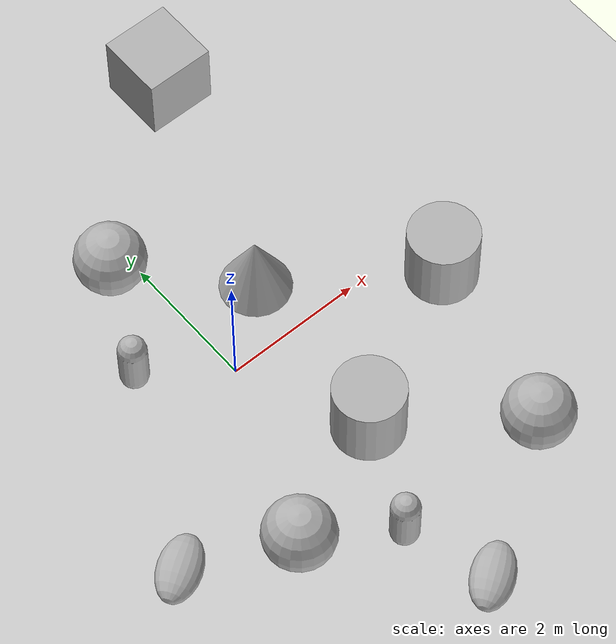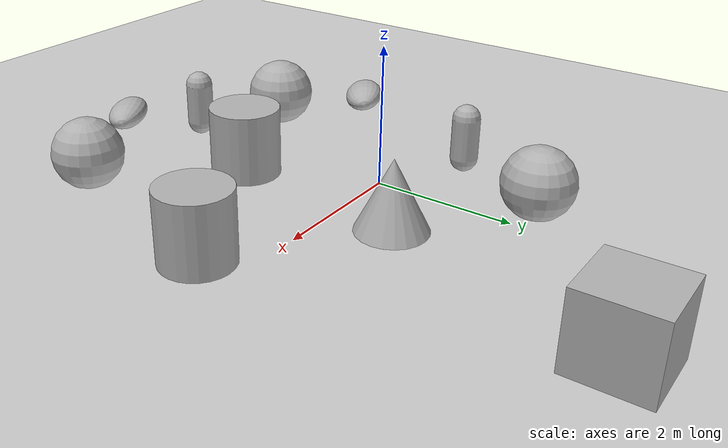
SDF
<sdf version='1.10'>
  <world name='empty'>
  	<plugin name='gz::sim::systems::Sensors' filename='gz-sim-sensors-system'>
  	<render_engine>ogre</render_engine>
	</plugin>
    <physics name='1ms' type='ignored'>
      <max_step_size>0.001</max_step_size>
      <real_time_factor>1</real_time_factor>
      <real_time_update_rate>1000</real_time_update_rate>
    </physics>
    <plugin name='gz::sim::systems::Physics' filename='gz-sim-physics-system'/>
    <plugin name='gz::sim::systems::UserCommands' filename='gz-sim-user-commands-system'/>
    <plugin name='gz::sim::systems::SceneBroadcaster' filename='gz-sim-scene-broadcaster-system'/>
    <plugin name='gz::sim::systems::Contact' filename='gz-sim-contact-system'/>
    <gravity>0 0 -9.8000000000000007</gravity>
    <magnetic_field>5.5644999999999998e-06 2.2875799999999999e-05 -4.2388400000000002e-05</magnetic_field>
    <atmosphere type='adiabatic'/>
    <scene>
      <ambient>0.400000006 0.400000006 0.400000006 1</ambient>
      <background>0.699999988 0.699999988 0.699999988 1</background>
      <shadows>true</shadows>
    </scene>
    <model name='ground_plane'>
      <static>true</static>
      <link name='link'>
        <collision name='collision'>
          <geometry>
            <plane>
              <normal>0 0 1</normal>
              <size>100 100</size>
            </plane>
          </geometry>
          <surface>
            <friction>
              <ode/>
            </friction>
            <bounce/>
            <contact/>
          </surface>
        </collision>
        <visual name='visual'>
          <geometry>
            <plane>
              <normal>0 0 1</normal>
              <size>100 100</size>
            </plane>
          </geometry>
          <material>
            <ambient>0.800000012 0.800000012 0.800000012 1</ambient>
            <diffuse>0.800000012 0.800000012 0.800000012 1</diffuse>
            <specular>0.800000012 0.800000012 0.800000012 1</specular>
          </material>
        </visual>
        <pose>0 0 0 0 0 0</pose>
        <inertial>
          <pose>0 0 0 0 0 0</pose>
          <mass>1</mass>
          <inertia>
            <ixx>1</ixx>
            <ixy>0</ixy>
            <ixz>0</ixz>
            <iyy>1</iyy>
            <iyz>0</iyz>
            <izz>1</izz>
          </inertia>
        </inertial>
        <enable_wind>false</enable_wind>
      </link>
      <pose>0 0 0 0 0 0</pose>
      <self_collide>false</self_collide>
    </model>

    <model name='cone'>
      <pose>1.0566565018909955 0.8556041575203317 0.49999999602630368 2.1489919356272052e-09 -8.0147252590950264e-09 -1.0114619432479267e-14</pose>
      <link name='cone_link'>
        <inertial>
          <inertia>
            <ixx>0.074999999999999997</ixx>
            <ixy>0</ixy>
            <ixz>0</ixz>
            <iyy>0.074999999999999997</iyy>
            <iyz>0</iyz>
            <izz>0.074999999999999997</izz>
          </inertia>
          <mass>1</mass>
          <pose>0 0 0 0 0 0</pose>
        </inertial>
        <collision name='cone_collision'>
          <geometry>
            <cone>
              <radius>0.5</radius>
              <length>1</length>
            </cone>
          </geometry>
          <surface>
            <friction>
              <ode/>
            </friction>
            <bounce/>
            <contact/>
          </surface>
        </collision>
        <visual name='cone_visual'>
          <geometry>
            <cone>
              <radius>0.5</radius>
              <length>1</length>
            </cone>
          </geometry>
          <material>
            <ambient>0.300000012 0.300000012 0.300000012 1</ambient>
            <diffuse>0.699999988 0.699999988 0.699999988 1</diffuse>
            <specular>1 1 1 1</specular>
          </material>
        </visual>
        <pose>0 0 0 0 0 0</pose>
        <enable_wind>false</enable_wind>
      </link>
      <static>false</static>
      <self_collide>false</self_collide>
    </model>
    <model name='cylinder'>
      <pose>0.78746553411709375 -1.7667481294421423 0.49999999631413172 -9.6359215885351035e-18 -5.7262084307341396e-17 2.2892490610145147e-17</pose>
      <link name='cylinder_link'>
        <inertial>
          <inertia>
            <ixx>0.14580000000000001</ixx>
            <ixy>0</ixy>
            <ixz>0</ixz>
            <iyy>0.14580000000000001</iyy>
            <iyz>0</iyz>
            <izz>0.125</izz>
          </inertia>
          <mass>1</mass>
          <pose>0 0 0 0 0 0</pose>
        </inertial>
        <collision name='cylinder_collision'>
          <geometry>
            <cylinder>
              <radius>0.5</radius>
              <length>1</length>
            </cylinder>
          </geometry>
          <surface>
            <friction>
              <ode/>
            </friction>
            <bounce/>
            <contact/>
          </surface>
        </collision>
        <visual name='cylinder_visual'>
          <geometry>
            <cylinder>
              <radius>0.5</radius>
              <length>1</length>
            </cylinder>
          </geometry>
          <material>
            <ambient>0.300000012 0.300000012 0.300000012 1</ambient>
            <diffuse>0.699999988 0.699999988 0.699999988 1</diffuse>
            <specular>1 1 1 1</specular>
          </material>
        </visual>
        <pose>0 0 0 0 0 0</pose>
        <enable_wind>false</enable_wind>
      </link>
      <static>false</static>
      <self_collide>false</self_collide>
    </model>
    <model name='capsule'>
      <pose>-1.099770901406921 0.73123100639006677 0.49999999020000274 0 0 0</pose>
      <link name='capsule_link'>
        <inertial>
          <inertia>
            <ixx>0.074153999999999998</ixx>
            <ixy>0</ixy>
            <ixz>0</ixz>
            <iyy>0.074153999999999998</iyy>
            <iyz>0</iyz>
            <izz>0.018769000000000001</izz>
          </inertia>
          <mass>1</mass>
          <pose>0 0 0 0 0 0</pose>
        </inertial>
        <collision name='capsule_collision'>
          <geometry>
            <capsule>
              <radius>0.20000000000000001</radius>
              <length>0.59999999999999998</length>
            </capsule>
          </geometry>
          <surface>
            <friction>
              <ode/>
            </friction>
            <bounce/>
            <contact/>
          </surface>
        </collision>
        <visual name='capsule_visual'>
          <geometry>
            <capsule>
              <radius>0.20000000000000001</radius>
              <length>0.59999999999999998</length>
            </capsule>
          </geometry>
          <material>
            <ambient>0.300000012 0.300000012 0.300000012 1</ambient>
            <diffuse>0.699999988 0.699999988 0.699999988 1</diffuse>
            <specular>1 1 1 1</specular>
          </material>
        </visual>
        <pose>0 0 0 0 0 0</pose>
        <enable_wind>false</enable_wind>
      </link>
      <static>false</static>
      <self_collide>false</self_collide>
    </model>
    <model name='ellipsoid'>
      <pose>-2.4260958961574453 -1.8574463369977108 0.18666848753861814 1.5707963267948863 -1.377489697700035 -0.98012862669004841</pose>
      <link name='ellipsoid_link'>
        <inertial>
          <inertia>
            <ixx>0.068000000000000005</ixx>
            <ixy>0</ixy>
            <ixz>0</ixz>
            <iyy>0.058000000000000003</iyy>
            <iyz>0</iyz>
            <izz>0.025999999999999999</izz>
          </inertia>
          <mass>1</mass>
          <pose>0 0 0 0 0 0</pose>
        </inertial>
        <collision name='ellipsoid_collision'>
          <geometry>
            <ellipsoid>
              <radii>0.20000000000000001 0.29999999999999999 0.5</radii>
            </ellipsoid>
          </geometry>
          <surface>
            <friction>
              <ode/>
            </friction>
            <bounce/>
            <contact/>
          </surface>
        </collision>
        <visual name='ellipsoid_visual'>
          <geometry>
            <ellipsoid>
              <radii>0.20000000000000001 0.29999999999999999 0.5</radii>
            </ellipsoid>
          </geometry>
          <material>
            <ambient>0.300000012 0.300000012 0.300000012 1</ambient>
            <diffuse>0.699999988 0.699999988 0.699999988 1</diffuse>
            <specular>1 1 1 1</specular>
          </material>
        </visual>
        <pose>0 0 0 0 0 0</pose>
        <enable_wind>false</enable_wind>
      </link>
      <static>false</static>
      <self_collide>false</self_collide>
    </model>
    <model name='cylinder_0'>
      <pose>3.0764837405353465 -0.61369960941644208 0.49999999631413172 -1.728194940527117e-17 5.9431014586288697e-18 2.7827239198683113e-18</pose>
      <link name='cylinder_link'>
        <inertial>
          <inertia>
            <ixx>0.14580000000000001</ixx>
            <ixy>0</ixy>
            <ixz>0</ixz>
            <iyy>0.14580000000000001</iyy>
            <iyz>0</iyz>
            <izz>0.125</izz>
          </inertia>
          <mass>1</mass>
          <pose>0 0 0 0 0 0</pose>
        </inertial>
        <collision name='cylinder_collision'>
          <geometry>
            <cylinder>
              <radius>0.5</radius>
              <length>1</length>
            </cylinder>
          </geometry>
          <surface>
            <friction>
              <ode/>
            </friction>
            <bounce/>
            <contact/>
          </surface>
        </collision>
        <visual name='cylinder_visual'>
          <geometry>
            <cylinder>
              <radius>0.5</radius>
              <length>1</length>
            </cylinder>
          </geometry>
          <material>
            <ambient>0.300000012 0.300000012 0.300000012 1</ambient>
            <diffuse>0.699999988 0.699999988 0.699999988 1</diffuse>
            <specular>1 1 1 1</specular>
          </material>
        </visual>
        <pose>0 0 0 0 0 0</pose>
        <enable_wind>false</enable_wind>
      </link>
      <static>false</static>
      <self_collide>false</self_collide>
    </model>
    <model name='sphere'>
      <pose>2.4231877144425642 -3.2163926055637568 0.49999999020007929 0 0 0</pose>
      <link name='sphere_link'>
        <inertial>
          <inertia>
            <ixx>0.10000000000000001</ixx>
            <ixy>0</ixy>
            <ixz>0</ixz>
            <iyy>0.10000000000000001</iyy>
            <iyz>0</iyz>
            <izz>0.10000000000000001</izz>
          </inertia>
          <mass>1</mass>
          <pose>0 0 0 0 0 0</pose>
        </inertial>
        <collision name='sphere_collision'>
          <geometry>
            <sphere>
              <radius>0.5</radius>
            </sphere>
          </geometry>
          <surface>
            <friction>
              <ode/>
            </friction>
            <bounce/>
            <contact/>
          </surface>
        </collision>
        <visual name='sphere_visual'>
          <geometry>
            <sphere>
              <radius>0.5</radius>
            </sphere>
          </geometry>
          <material>
            <ambient>0.300000012 0.300000012 0.300000012 1</ambient>
            <diffuse>0.699999988 0.699999988 0.699999988 1</diffuse>
            <specular>1 1 1 1</specular>
          </material>
        </visual>
        <pose>0 0 0 0 0 0</pose>
        <enable_wind>false</enable_wind>
      </link>
      <static>false</static>
      <self_collide>false</self_collide>
    </model>
    <model name='box'>
      <pose>2.079968336541997 4.1753194123079114 0.49999999019962771 5.4679632367081554e-17 -1.8373831898474627e-20 8.3923809367064588e-19</pose>
      <link name='box_link'>
        <inertial>
          <inertia>
            <ixx>0.16666</ixx>
            <ixy>0</ixy>
            <ixz>0</ixz>
            <iyy>0.16666</iyy>
            <iyz>0</iyz>
            <izz>0.16666</izz>
          </inertia>
          <mass>1</mass>
          <pose>0 0 0 0 0 0</pose>
        </inertial>
        <collision name='box_collision'>
          <geometry>
            <box>
              <size>1 1 1</size>
            </box>
          </geometry>
          <surface>
            <friction>
              <ode/>
            </friction>
            <bounce/>
            <contact/>
          </surface>
        </collision>
        <visual name='box_visual'>
          <geometry>
            <box>
              <size>1 1 1</size>
            </box>
          </geometry>
          <material>
            <ambient>0.300000012 0.300000012 0.300000012 1</ambient>
            <diffuse>0.699999988 0.699999988 0.699999988 1</diffuse>
            <specular>1 1 1 1</specular>
          </material>
        </visual>
        <pose>0 0 0 0 0 0</pose>
        <enable_wind>false</enable_wind>
      </link>
      <static>false</static>
      <self_collide>false</self_collide>
    </model>
    <model name='sphere_0'>
      <pose>-0.34474312620855496 2.1793273266712281 0.49999999020008112 0 0 0</pose>
      <link name='sphere_link'>
        <inertial>
          <inertia>
            <ixx>0.10000000000000001</ixx>
            <ixy>0</ixy>
            <ixz>0</ixz>
            <iyy>0.10000000000000001</iyy>
            <iyz>0</iyz>
            <izz>0.10000000000000001</izz>
          </inertia>
          <mass>1</mass>
          <pose>0 0 0 0 0 0</pose>
        </inertial>
        <collision name='sphere_collision'>
          <geometry>
            <sphere>
              <radius>0.5</radius>
            </sphere>
          </geometry>
          <surface>
            <friction>
              <ode/>
            </friction>
            <bounce/>
            <contact/>
          </surface>
        </collision>
        <visual name='sphere_visual'>
          <geometry>
            <sphere>
              <radius>0.5</radius>
            </sphere>
          </geometry>
          <material>
            <ambient>0.300000012 0.300000012 0.300000012 1</ambient>
            <diffuse>0.699999988 0.699999988 0.699999988 1</diffuse>
            <specular>1 1 1 1</specular>
          </material>
        </visual>
        <pose>0 0 0 0 0 0</pose>
        <enable_wind>false</enable_wind>
      </link>
      <static>false</static>
      <self_collide>false</self_collide>
    </model>
    <model name='ellipsoid_0'>
      <pose>0.51080375489052032 -4.4794943534361975 0.18666848753861803 1.570796326794891 -1.3774896977000304 -0.96734841873208532</pose>
      <link name='ellipsoid_link'>
        <inertial>
          <inertia>
            <ixx>0.068000000000000005</ixx>
            <ixy>0</ixy>
            <ixz>0</ixz>
            <iyy>0.058000000000000003</iyy>
            <iyz>0</iyz>
            <izz>0.025999999999999999</izz>
          </inertia>
          <mass>1</mass>
          <pose>0 0 0 0 0 0</pose>
        </inertial>
        <collision name='ellipsoid_collision'>
          <geometry>
            <ellipsoid>
              <radii>0.20000000000000001 0.29999999999999999 0.5</radii>
            </ellipsoid>
          </geometry>
          <surface>
            <friction>
              <ode/>
            </friction>
            <bounce/>
            <contact/>
          </surface>
        </collision>
        <visual name='ellipsoid_visual'>
          <geometry>
            <ellipsoid>
              <radii>0.20000000000000001 0.29999999999999999 0.5</radii>
            </ellipsoid>
          </geometry>
          <material>
            <ambient>0.300000012 0.300000012 0.300000012 1</ambient>
            <diffuse>0.699999988 0.699999988 0.699999988 1</diffuse>
            <specular>1 1 1 1</specular>
          </material>
        </visual>
        <pose>0 0 0 0 0 0</pose>
        <enable_wind>false</enable_wind>
      </link>
      <static>false</static>
      <self_collide>false</self_collide>
    </model>
    <model name='capsule_0'>
      <pose>0.087792214610092678 -3.2773587592030031 0.49999999020000274 0 0 0</pose>
      <link name='capsule_link'>
        <inertial>
          <inertia>
            <ixx>0.074153999999999998</ixx>
            <ixy>0</ixy>
            <ixz>0</ixz>
            <iyy>0.074153999999999998</iyy>
            <iyz>0</iyz>
            <izz>0.018769000000000001</izz>
          </inertia>
          <mass>1</mass>
          <pose>0 0 0 0 0 0</pose>
        </inertial>
        <collision name='capsule_collision'>
          <geometry>
            <capsule>
              <radius>0.20000000000000001</radius>
              <length>0.59999999999999998</length>
            </capsule>
          </geometry>
          <surface>
            <friction>
              <ode/>
            </friction>
            <bounce/>
            <contact/>
          </surface>
        </collision>
        <visual name='capsule_visual'>
          <geometry>
            <capsule>
              <radius>0.20000000000000001</radius>
              <length>0.59999999999999998</length>
            </capsule>
          </geometry>
          <material>
            <ambient>0.300000012 0.300000012 0.300000012 1</ambient>
            <diffuse>0.699999988 0.699999988 0.699999988 1</diffuse>
            <specular>1 1 1 1</specular>
          </material>
        </visual>
        <pose>0 0 0 0 0 0</pose>
        <enable_wind>false</enable_wind>
      </link>
      <static>false</static>
      <self_collide>false</self_collide>
    </model>
    <model name='sphere_1'>
      <pose>-1.0562264849112601 -2.5685028196578705 0.49999999020008074 0 0 0</pose>
      <link name='sphere_link'>
        <inertial>
          <inertia>
            <ixx>0.10000000000000001</ixx>
            <ixy>0</ixy>
            <ixz>0</ixz>
            <iyy>0.10000000000000001</iyy>
            <iyz>0</iyz>
            <izz>0.10000000000000001</izz>
          </inertia>
          <mass>1</mass>
          <pose>0 0 0 0 0 0</pose>
        </inertial>
        <collision name='sphere_collision'>
          <geometry>
            <sphere>
              <radius>0.5</radius>
            </sphere>
          </geometry>
          <surface>
            <friction>
              <ode/>
            </friction>
            <bounce/>
            <contact/>
          </surface>
        </collision>
        <visual name='sphere_visual'>
          <geometry>
            <sphere>
              <radius>0.5</radius>
            </sphere>
          </geometry>
          <material>
            <ambient>0.300000012 0.300000012 0.300000012 1</ambient>
            <diffuse>0.699999988 0.699999988 0.699999988 1</diffuse>
            <specular>1 1 1 1</specular>
          </material>
        </visual>
        <pose>0 0 0 0 0 0</pose>
        <enable_wind>false</enable_wind>
      </link>
      <static>false</static>
      <self_collide>false</self_collide>
    </model>
    <light name='sun' type='directional'>
      <pose>0 0 10 0 0 0</pose>
      <cast_shadows>true</cast_shadows>
      <intensity>1</intensity>
      <direction>-0.5 0.10000000000000001 -0.90000000000000002</direction>
      <diffuse>0.800000012 0.800000012 0.800000012 1</diffuse>
      <specular>0.200000003 0.200000003 0.200000003 1</specular>
      <attenuation>
        <range>1000</range>
        <linear>0.01</linear>
        <constant>0.90000000000000002</constant>
        <quadratic>0.001</quadratic>
      </attenuation>
      <spot>
        <inner_angle>0</inner_angle>
        <outer_angle>0</outer_angle>
        <falloff>0</falloff>
      </spot>
    </light>
  </world>
</sdf>
